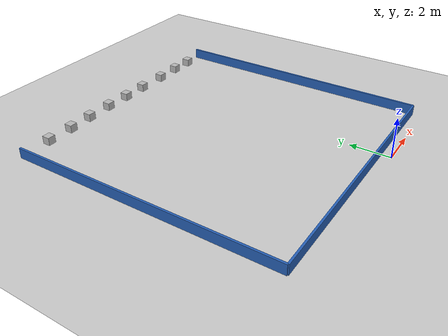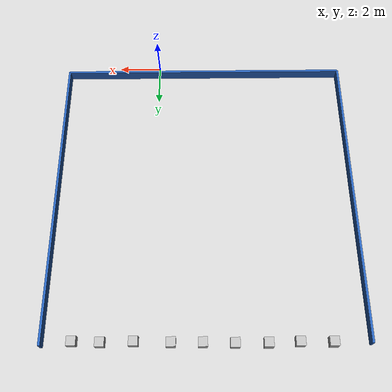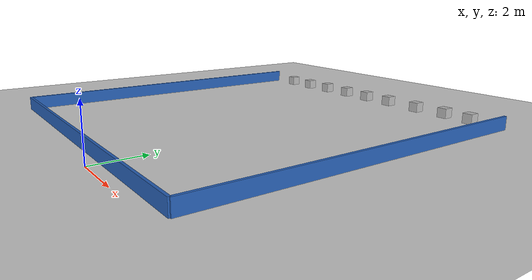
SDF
<sdf version="1.5">
 <world name="default">
  <include><uri>model://sun</uri></include>
  <include><uri>model://ground_plane</uri></include>
  <model name="bottom_wall">
   <static>1</static>
   <pose>-2.25 0.5 0.000000 0.000000 0.000000 1.57079632</pose>
   <link name="link">
    <inertial>
     <mass>1</mass>
     <inertia><ixx>0.145833</ixx><ixy>0</ixy><ixz>0</ixz><iyy>0.145833</iyy><iyz>0</iyz><izz>0.125</izz></inertia>
    </inertial>
    <collision name="collision"><geometry><box><size>0.1 13.5 1</size></box></geometry></collision>
    <visual name="visual">
     <geometry><box><size>0.1 13.5 1</size></box></geometry>
     <material>
      <ambient>0.152000 0.379000 0.720000 1</ambient>
      <diffuse>0.152000 0.379000 0.720000 1</diffuse>
     </material>
     <material>
      <script><name>Gazebo/Grey</name><uri>file://media/materials/scripts/gazebo.material</uri></script>
     </material>
    </visual>
   </link>
  </model>
  <model name="left_wall">
   <static>1</static>
   <pose>-9 7.25 0.000000 0.000000 0.000000 0.000000</pose>
   <link name="link">
    <inertial>
     <mass>1</mass>
     <inertia><ixx>0.145833</ixx><ixy>0</ixy><ixz>0</ixz><iyy>0.145833</iyy><iyz>0</iyz><izz>0.125</izz></inertia>
    </inertial>
    <collision name="collision"><geometry><box><size>0.1 13.5 1</size></box></geometry></collision>
    <visual name="visual">
     <geometry><box><size>0.1 13.5 1</size></box></geometry>
     <material>
      <ambient>0.152000 0.379000 0.720000 1</ambient>
      <diffuse>0.152000 0.379000 0.720000 1</diffuse>
     </material>
     <material>
      <script><name>Gazebo/Grey</name><uri>file://media/materials/scripts/gazebo.material</uri></script>
     </material>
    </visual>
   </link>
  </model>
  <model name="right_wall">
   <static>1</static>
   <pose>4.5 7.25 0.000000 0.000000 0.000000 0.000000</pose>
   <link name="link">
    <inertial>
     <mass>1</mass>
     <inertia><ixx>0.145833</ixx><ixy>0</ixy><ixz>0</ixz><iyy>0.145833</iyy><iyz>0</iyz><izz>0.125</izz></inertia>
    </inertial>
    <collision name="collision"><geometry><box><size>0.1 13.5 1</size></box></geometry></collision>
    <visual name="visual">
     <geometry><box><size>0.1 13.5 1</size></box></geometry>
     <material>
      <ambient>0.152000 0.379000 0.720000 1</ambient>
      <diffuse>0.152000 0.379000 0.720000 1</diffuse>
     </material>
     <material>
      <script><name>Gazebo/Grey</name><uri>file://media/materials/scripts/gazebo.material</uri></script>
     </material>
    </visual>
   </link>
  </model>
  <model name="cardboard_box_0">
   <pose>3.250134 13.782131 0.15 0 -0 0</pose>
   <link name="link">
    <inertial>
     <mass>2</mass>
     <inertia>
      <ixx>0.0416667</ixx>
      <ixy>0</ixy>
      <ixz>0</ixz>
      <iyy>0.0566667</iyy>
      <iyz>0</iyz>
      <izz>0.0683333</izz>
     </inertia>
    </inertial>
    <collision name="collision">
     <geometry><box><size>0.5 0.4 0.3</size></box></geometry>
     <surface>
      <friction><ode><mu>1</mu><mu2>1</mu2></ode></friction>
      <contact><ode><kp>1e+07</kp><kd>1</kd><min_depth>0.001</min_depth><max_vel>0.1</max_vel></ode></contact>
     </surface>
    </collision>
    <visual name="visual">
     <pose>0 0 -0.15 0 -0 0</pose>
     <geometry>
      <mesh><uri>model://cardboard_box/meshes/cardboard_box.dae</uri><scale>1 1 1</scale></mesh>
     </geometry>
    </visual>
   </link>
  </model>
  <model name="cardboard_box_1">
   <pose>2.091177 13.829994 0.15 0 -0 0</pose>
   <link name="link">
    <inertial>
     <mass>2</mass>
     <inertia>
      <ixx>0.0416667</ixx>
      <ixy>0</ixy>
      <ixz>0</ixz>
      <iyy>0.0566667</iyy>
      <iyz>0</iyz>
      <izz>0.0683333</izz>
     </inertia>
    </inertial>
    <collision name="collision">
     <geometry><box><size>0.5 0.4 0.3</size></box></geometry>
     <surface>
      <friction><ode><mu>1</mu><mu2>1</mu2></ode></friction>
      <contact><ode><kp>1e+07</kp><kd>1</kd><min_depth>0.001</min_depth><max_vel>0.1</max_vel></ode></contact>
     </surface>
    </collision>
    <visual name="visual">
     <pose>0 0 -0.15 0 -0 0</pose>
     <geometry>
      <mesh><uri>model://cardboard_box/meshes/cardboard_box.dae</uri><scale>1 1 1</scale></mesh>
     </geometry>
    </visual>
   </link>
  </model>
  <model name="cardboard_box_2">
   <pose>-7.462586 13.883363 0.15 0 -0 0</pose>
   <link name="link">
    <inertial>
     <mass>2</mass>
     <inertia>
      <ixx>0.0416667</ixx>
      <ixy>0</ixy>
      <ixz>0</ixz>
      <iyy>0.0566667</iyy>
      <iyz>0</iyz>
      <izz>0.0683333</izz>
     </inertia>
    </inertial>
    <collision name="collision">
     <geometry><box><size>0.5 0.4 0.3</size></box></geometry>
     <surface>
      <friction><ode><mu>1</mu><mu2>1</mu2></ode></friction>
      <contact><ode><kp>1e+07</kp><kd>1</kd><min_depth>0.001</min_depth><max_vel>0.1</max_vel></ode></contact>
     </surface>
    </collision>
    <visual name="visual">
     <pose>0 0 -0.15 0 -0 0</pose>
     <geometry>
      <mesh><uri>model://cardboard_box/meshes/cardboard_box.dae</uri><scale>1 1 1</scale></mesh>
     </geometry>
    </visual>
   </link>
  </model>
  <model name="cardboard_box_3">
   <pose>-6.093678 13.862485 0.15 0 -0 0</pose>
   <link name="link">
    <inertial>
     <mass>2</mass>
     <inertia>
      <ixx>0.0416667</ixx>
      <ixy>0</ixy>
      <ixz>0</ixz>
      <iyy>0.0566667</iyy>
      <iyz>0</iyz>
      <izz>0.0683333</izz>
     </inertia>
    </inertial>
    <collision name="collision">
     <geometry><box><size>0.5 0.4 0.3</size></box></geometry>
     <surface>
      <friction><ode><mu>1</mu><mu2>1</mu2></ode></friction>
      <contact><ode><kp>1e+07</kp><kd>1</kd><min_depth>0.001</min_depth><max_vel>0.1</max_vel></ode></contact>
     </surface>
    </collision>
    <visual name="visual">
     <pose>0 0 -0.15 0 -0 0</pose>
     <geometry>
      <mesh><uri>model://cardboard_box/meshes/cardboard_box.dae</uri><scale>1 1 1</scale></mesh>
     </geometry>
    </visual>
   </link>
  </model>
  <model name="cardboard_box_4">
   <pose>0.724538 13.805448 0.15 0 -0 0</pose>
   <link name="link">
    <inertial>
     <mass>2</mass>
     <inertia>
      <ixx>0.0416667</ixx>
      <ixy>0</ixy>
      <ixz>0</ixz>
      <iyy>0.0566667</iyy>
      <iyz>0</iyz>
      <izz>0.0683333</izz>
     </inertia>
    </inertial>
    <collision name="collision">
     <geometry><box><size>0.5 0.4 0.3</size></box></geometry>
     <surface>
      <friction><ode><mu>1</mu><mu2>1</mu2></ode></friction>
      <contact><ode><kp>1e+07</kp><kd>1</kd><min_depth>0.001</min_depth><max_vel>0.1</max_vel></ode></contact>
     </surface>
    </collision>
    <visual name="visual">
     <pose>0 0 -0.15 0 -0 0</pose>
     <geometry>
      <mesh><uri>model://cardboard_box/meshes/cardboard_box.dae</uri><scale>1 1 1</scale></mesh>
     </geometry>
    </visual>
   </link>
  </model>
  <model name="cardboard_box_5">
   <pose>-0.803209 13.852224 0.15 0 -0 0</pose>
   <link name="link">
    <inertial>
     <mass>2</mass>
     <inertia>
      <ixx>0.0416667</ixx>
      <ixy>0</ixy>
      <ixz>0</ixz>
      <iyy>0.0566667</iyy>
      <iyz>0</iyz>
      <izz>0.0683333</izz>
     </inertia>
    </inertial>
    <collision name="collision">
     <geometry><box><size>0.5 0.4 0.3</size></box></geometry>
     <surface>
      <friction><ode><mu>1</mu><mu2>1</mu2></ode></friction>
      <contact><ode><kp>1e+07</kp><kd>1</kd><min_depth>0.001</min_depth><max_vel>0.1</max_vel></ode></contact>
     </surface>
    </collision>
    <visual name="visual">
     <pose>0 0 -0.15 0 -0 0</pose>
     <geometry>
      <mesh><uri>model://cardboard_box/meshes/cardboard_box.dae</uri><scale>1 1 1</scale></mesh>
     </geometry>
    </visual>
   </link>
  </model>
  <model name="cardboard_box_6">
   <pose>-3.432549 13.896216 0.15 0 -0 0</pose>
   <link name="link">
    <inertial>
     <mass>2</mass>
     <inertia>
      <ixx>0.0416667</ixx>
      <ixy>0</ixy>
      <ixz>0</ixz>
      <iyy>0.0566667</iyy>
      <iyz>0</iyz>
      <izz>0.0683333</izz>
     </inertia>
    </inertial>
    <collision name="collision">
     <geometry><box><size>0.5 0.4 0.3</size></box></geometry>
     <surface>
      <friction><ode><mu>1</mu><mu2>1</mu2></ode></friction>
      <contact><ode><kp>1e+07</kp><kd>1</kd><min_depth>0.001</min_depth><max_vel>0.1</max_vel></ode></contact>
     </surface>
    </collision>
    <visual name="visual">
     <pose>0 0 -0.15 0 -0 0</pose>
     <geometry>
      <mesh><uri>model://cardboard_box/meshes/cardboard_box.dae</uri><scale>1 1 1</scale></mesh>
     </geometry>
    </visual>
   </link>
  </model>
  <model name="cardboard_box_7">
   <pose>-4.801832 13.900365 0.15 0 -0 0</pose>
   <link name="link">
    <inertial>
     <mass>2</mass>
     <inertia>
      <ixx>0.0416667</ixx>
      <ixy>0</ixy>
      <ixz>0</ixz>
      <iyy>0.0566667</iyy>
      <iyz>0</iyz>
      <izz>0.0683333</izz>
     </inertia>
    </inertial>
    <collision name="collision">
     <geometry><box><size>0.2 0.1 0.2</size></box></geometry>
     <surface>
      <friction><ode><mu>1</mu><mu2>1</mu2></ode></friction>
      <contact><ode><kp>1e+07</kp><kd>1</kd><min_depth>0.001</min_depth><max_vel>0.1</max_vel></ode></contact>
     </surface>
    </collision>
    <visual name="visual">
     <pose>0 0 -0.15 0 -0 0</pose>
     <geometry>
      <mesh><uri>model://cardboard_box/meshes/cardboard_box.dae</uri><scale>1 1 1</scale></mesh>
     </geometry>
    </visual>
   </link>
  </model>
  <model name="cardboard_box_8">
   <pose>-2.113827 13.863562 0.15 0 -0 0</pose>
   <link name="link">
    <inertial>
     <mass>2</mass>
     <inertia>
      <ixx>0.0416667</ixx>
      <ixy>0</ixy>
      <ixz>0</ixz>
      <iyy>0.0566667</iyy>
      <iyz>0</iyz>
      <izz>0.0683333</izz>
     </inertia>
    </inertial>
    <collision name="collision">
     <geometry><box><size>0.3 0.7 0.2</size></box></geometry>
     <surface>
      <friction><ode><mu>1</mu><mu2>1</mu2></ode></friction>
      <contact><ode><kp>1e+07</kp><kd>1</kd><min_depth>0.001</min_depth><max_vel>0.1</max_vel></ode></contact>
     </surface>
    </collision>
    <visual name="visual">
     <pose>0 0 -0.15 0 -0 0</pose>
     <geometry>
      <mesh><uri>model://cardboard_box/meshes/cardboard_box.dae</uri><scale>1 1 1</scale></mesh>
     </geometry>
    </visual>
   </link>
  </model>
  <plugin name="gazebo_ros_state" filename="libgazebo_ros_state.so">
   <ros><namespace>/gazebo</namespace></ros>
   <update_rate>50</update_rate>
  </plugin>
 </world>
</sdf>
